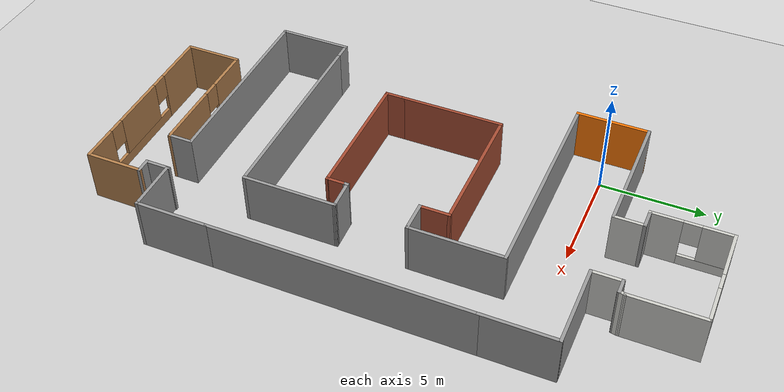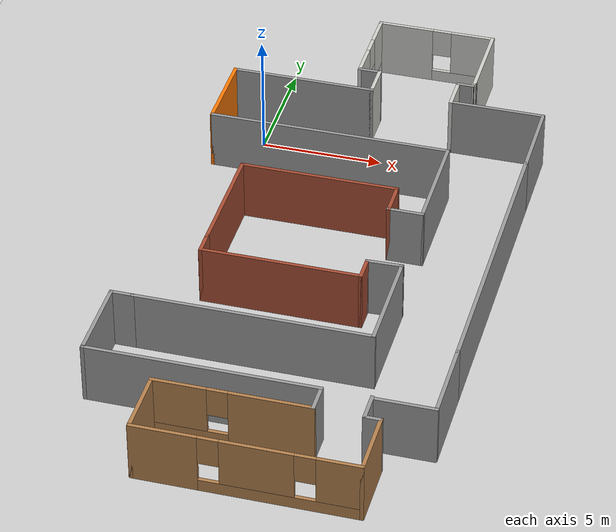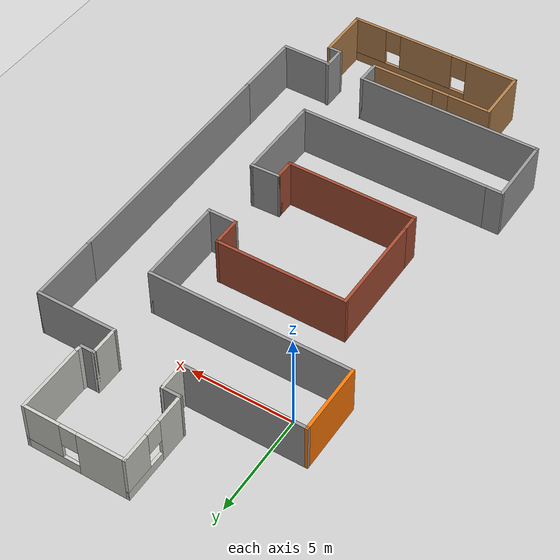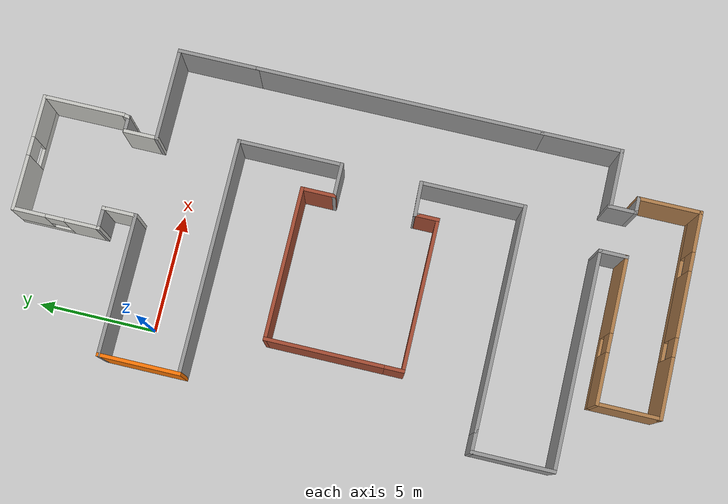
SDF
<sdf version="1.7">
 <world name="lab_world">
  <gravity>0 0 -9.8</gravity>
  <model name="ground_plane">
   <static>1</static>
   <link name="link">
    <collision name="collision">
     <geometry><plane><normal>0 0 1</normal><size>100 100</size></plane></geometry>
     <surface><friction><ode><mu>100</mu><mu2>50</mu2></ode></friction></surface>
    </collision>
    <visual name="visual">
     <cast_shadows>0</cast_shadows>
     <geometry><plane><normal>0 0 1</normal><size>100 100</size></plane></geometry>
     <material>
      <script><uri>file://media/materials/scripts/gazebo.material</uri><name>Gazebo/Grey</name></script>
     </material>
    </visual>
   </link>
  </model>
  <light name="sun" type="directional">
   <pose>0 0 10 0 -0 0</pose>
   <diffuse>0.8 0.8 0.8 1</diffuse>
   <specular>0.2 0.2 0.2 1</specular>
   <attenuation>
    <range>1000</range>
    <constant>0.9</constant>
    <linear>0.01</linear>
    <quadratic>0.001</quadratic>
   </attenuation>
   <direction>-0.5 0.1 -0.9</direction>
   <spot><inner_angle>0</inner_angle><outer_angle>0</outer_angle><falloff>0</falloff></spot>
  </light>
  <magnetic_field>6e-06 2.3e-05 -4.2e-05</magnetic_field>
  <atmosphere type="adiabatic"/>
  <physics type="ode">
   <max_step_size>0.001</max_step_size>
   <real_time_factor>1</real_time_factor>
   <real_time_update_rate>1000</real_time_update_rate>
  </physics>
  <scene><ambient>0.4 0.4 0.4 1</ambient><background>0.7 0.7 0.7 1</background><shadows>1</shadows></scene>
  <spherical_coordinates>
   <surface_model>EARTH_WGS84</surface_model>
   <latitude_deg>0</latitude_deg>
   <longitude_deg>0</longitude_deg>
   <elevation>0</elevation>
   <heading_deg>0</heading_deg>
  </spherical_coordinates>
  <model name="10floor">
   <pose>4.71186 -7.18173 0 0 -0 0</pose>
   <link name="Wall_1">
    <collision name="Wall_1_Collision">
     <geometry><box><size>3.5 0.15 2.5</size></box></geometry>
     <pose>0 0 1.25 0 -0 0</pose>
    </collision>
    <visual name="Wall_1_Visual">
     <pose>0 0 1.25 0 -0 0</pose>
     <geometry><box><size>3.5 0.15 2.5</size></box></geometry>
     <material>
      <script><uri>file://media/materials/scripts/gazebo.material</uri><name>Gazebo/Grey</name></script>
      <ambient>0.996078 0.47451 0.0196078 1</ambient>
     </material>
     <meta><layer>0</layer></meta>
    </visual>
    <pose>-6.35 7.075 0 0 -0 -1.5708</pose>
   </link>
   <link name="Wall_12">
    <collision name="Wall_12_Collision">
     <geometry><box><size>1.5 0.15 2.5</size></box></geometry>
     <pose>0 0 1.25 0 -0 0</pose>
    </collision>
    <visual name="Wall_12_Visual">
     <pose>0 0 1.25 0 -0 0</pose>
     <geometry><box><size>1.5 0.15 2.5</size></box></geometry>
     <material>
      <script><uri>file://media/materials/scripts/gazebo.material</uri><name>Gazebo/CeilingTiled</name></script>
      <ambient>1 1 1 1</ambient>
     </material>
     <meta><layer>0</layer></meta>
    </visual>
    <pose>-0.5 9.425 0 0 -0 1.5708</pose>
   </link>
   <link name="Wall_13">
    <collision name="Wall_13_Collision">
     <geometry><box><size>1 0.15 2.5</size></box></geometry>
     <pose>0 0 1.25 0 -0 0</pose>
    </collision>
    <visual name="Wall_13_Visual">
     <pose>0 0 1.25 0 -0 0</pose>
     <geometry><box><size>1 0.15 2.5</size></box></geometry>
     <material>
      <script><uri>file://media/materials/scripts/gazebo.material</uri><name>Gazebo/Grey</name></script>
      <ambient>1 1 1 1</ambient>
     </material>
     <meta><layer>0</layer></meta>
    </visual>
    <pose>-0.925 10.1 0 0 -0 3.14159</pose>
   </link>
   <link name="Wall_14">
    <pose>-1.35 11.9 0 0 -0 1.5708</pose>
    <visual name="Wall_14_Visual_0">
     <pose>-1.12461 0 1.25 0 -0 0</pose>
     <geometry><box><size>1.50079 0.15 2.5</size></box></geometry>
     <material>
      <script><uri>file://media/materials/scripts/gazebo.material</uri><name>Gazebo/CeilingTiled</name></script>
      <ambient>1 1 1 1</ambient>
     </material>
     <meta><layer>0</layer></meta>
    </visual>
    <collision name="Wall_14_Collision_0">
     <geometry><box><size>1.50079 0.15 2.5</size></box></geometry>
     <pose>-1.12461 0 1.25 0 -0 0</pose>
    </collision>
    <visual name="Wall_14_Visual_1">
     <pose>0.750395 0 0.25 0 -0 0</pose>
     <geometry><box><size>2.24921 0.15 0.5</size></box></geometry>
     <material>
      <script><uri>file://media/materials/scripts/gazebo.material</uri><name>Gazebo/CeilingTiled</name></script>
      <ambient>1 1 1 1</ambient>
     </material>
     <meta><layer>0</layer></meta>
    </visual>
    <collision name="Wall_14_Collision_1">
     <geometry><box><size>2.24921 0.15 0.5</size></box></geometry>
     <pose>0.750395 0 0.25 0 -0 0</pose>
    </collision>
    <visual name="Wall_14_Visual_2">
     <pose>1.1504 0 1.5 0 -0 0</pose>
     <geometry><box><size>1.44921 0.15 2</size></box></geometry>
     <material>
      <script><uri>file://media/materials/scripts/gazebo.material</uri><name>Gazebo/CeilingTiled</name></script>
      <ambient>1 1 1 1</ambient>
     </material>
     <meta><layer>0</layer></meta>
    </visual>
    <collision name="Wall_14_Collision_2">
     <geometry><box><size>1.44921 0.15 2</size></box></geometry>
     <pose>1.1504 0 1.5 0 -0 0</pose>
    </collision>
    <visual name="Wall_14_Visual_3">
     <pose>0.025791 0 1.9 0 -0 0</pose>
     <geometry><box><size>0.8 0.15 1.2</size></box></geometry>
     <material>
      <script><uri>file://media/materials/scripts/gazebo.material</uri><name>Gazebo/CeilingTiled</name></script>
      <ambient>1 1 1 1</ambient>
     </material>
     <meta><layer>0</layer></meta>
    </visual>
    <collision name="Wall_14_Collision_3">
     <geometry><box><size>0.8 0.15 1.2</size></box></geometry>
     <pose>0.025791 0 1.9 0 -0 0</pose>
    </collision>
   </link>
   <link name="Wall_15">
    <pose>1.075 13.7 0 0 -0 0</pose>
    <visual name="Wall_15_Visual_0">
     <pose>-1.31849 0 1.25 0 -0 0</pose>
     <geometry><box><size>2.36301 0.15 2.5</size></box></geometry>
     <material>
      <script><uri>file://media/materials/scripts/gazebo.material</uri><name>Gazebo/CeilingTiled</name></script>
      <ambient>1 1 1 1</ambient>
     </material>
     <meta><layer>0</layer></meta>
    </visual>
    <collision name="Wall_15_Collision_0">
     <geometry><box><size>2.36301 0.15 2.5</size></box></geometry>
     <pose>-1.31849 0 1.25 0 -0 0</pose>
    </collision>
    <visual name="Wall_15_Visual_1">
     <pose>1.18151 0 0.25 0 -0 0</pose>
     <geometry><box><size>2.63699 0.15 0.5</size></box></geometry>
     <material>
      <script><uri>file://media/materials/scripts/gazebo.material</uri><name>Gazebo/CeilingTiled</name></script>
      <ambient>1 1 1 1</ambient>
     </material>
     <meta><layer>0</layer></meta>
    </visual>
    <collision name="Wall_15_Collision_1">
     <geometry><box><size>2.63699 0.15 0.5</size></box></geometry>
     <pose>1.18151 0 0.25 0 -0 0</pose>
    </collision>
    <visual name="Wall_15_Visual_2">
     <pose>1.5815 0 1.5 0 -0 0</pose>
     <geometry><box><size>1.83699 0.15 2</size></box></geometry>
     <material>
      <script><uri>file://media/materials/scripts/gazebo.material</uri><name>Gazebo/CeilingTiled</name></script>
      <ambient>1 1 1 1</ambient>
     </material>
     <meta><layer>0</layer></meta>
    </visual>
    <collision name="Wall_15_Collision_2">
     <geometry><box><size>1.83699 0.15 2</size></box></geometry>
     <pose>1.5815 0 1.5 0 -0 0</pose>
    </collision>
    <visual name="Wall_15_Visual_3">
     <pose>0.263011 0 1.9 0 -0 0</pose>
     <geometry><box><size>0.8 0.15 1.2</size></box></geometry>
     <material>
      <script><uri>file://media/materials/scripts/gazebo.material</uri><name>Gazebo/CeilingTiled</name></script>
      <ambient>1 1 1 1</ambient>
     </material>
     <meta><layer>0</layer></meta>
    </visual>
    <collision name="Wall_15_Collision_3">
     <geometry><box><size>0.8 0.15 1.2</size></box></geometry>
     <pose>0.263011 0 1.9 0 -0 0</pose>
    </collision>
   </link>
   <link name="Wall_16">
    <collision name="Wall_16_Collision">
     <geometry><box><size>3.5 0.15 2.5</size></box></geometry>
     <pose>0 0 1.25 0 -0 0</pose>
    </collision>
    <visual name="Wall_16_Visual">
     <pose>0 0 1.25 0 -0 0</pose>
     <geometry><box><size>3.5 0.15 2.5</size></box></geometry>
     <material>
      <script><uri>file://media/materials/scripts/gazebo.material</uri><name>Gazebo/CeilingTiled</name></script>
      <ambient>1 1 1 1</ambient>
     </material>
     <meta><layer>0</layer></meta>
    </visual>
    <pose>3.5 12.025 0 0 -0 -1.5708</pose>
   </link>
   <link name="Wall_18">
    <collision name="Wall_18_Collision">
     <geometry><box><size>1.5 0.15 2.5</size></box></geometry>
     <pose>0 0 1.25 0 -0 0</pose>
    </collision>
    <visual name="Wall_18_Visual">
     <pose>0 0 1.25 0 -0 0</pose>
     <geometry><box><size>1.5 0.15 2.5</size></box></geometry>
     <material>
      <script><uri>file://media/materials/scripts/gazebo.material</uri><name>Gazebo/CeilingTiled</name></script>
      <ambient>1 1 1 1</ambient>
     </material>
     <meta><layer>0</layer></meta>
    </visual>
    <pose>2.85 9.425 0 0 -0 1.5708</pose>
   </link>
   <link name="Wall_19">
    <collision name="Wall_19_Collision">
     <geometry><box><size>0.75 0.15 2.5</size></box></geometry>
     <pose>0 0 1.25 0 -0 0</pose>
    </collision>
    <visual name="Wall_19_Visual">
     <pose>0 0 1.25 0 -0 0</pose>
     <geometry><box><size>0.75 0.15 2.5</size></box></geometry>
     <material>
      <script><uri>file://media/materials/scripts/gazebo.material</uri><name>Gazebo/Grey</name></script>
      <ambient>1 1 1 1</ambient>
     </material>
     <meta><layer>0</layer></meta>
    </visual>
    <pose>3.15 10.1 0 0 -0 0</pose>
   </link>
   <link name="Wall_20">
    <collision name="Wall_20_Collision">
     <geometry><box><size>0.404951 0.15 2.5</size></box></geometry>
     <pose>0 0 1.25 0 -0 0</pose>
    </collision>
    <visual name="Wall_20_Visual">
     <pose>0 0 1.25 0 -0 0</pose>
     <geometry><box><size>0.404951 0.15 2.5</size></box></geometry>
     <material>
      <script><uri>file://media/materials/scripts/gazebo.material</uri><name>Gazebo/CeilingTiled</name></script>
      <ambient>1 1 1 1</ambient>
     </material>
     <meta><layer>0</layer></meta>
    </visual>
    <pose>3.475 10.225 0 0 -0 1.3734</pose>
   </link>
   <link name="Wall_22">
    <collision name="Wall_22_Collision">
     <geometry><box><size>4.5 0.15 2.5</size></box></geometry>
     <pose>0 0 1.25 0 -0 0</pose>
    </collision>
    <visual name="Wall_22_Visual">
     <pose>0 0 1.25 0 -0 0</pose>
     <geometry><box><size>4.5 0.15 2.5</size></box></geometry>
     <material>
      <script><uri>file://media/materials/scripts/gazebo.material</uri><name>Gazebo/Grey</name></script>
      <ambient>1 1 1 1</ambient>
     </material>
     <meta><layer>0</layer></meta>
    </visual>
    <pose>3.5 3.225 0 0 -0 -1.5708</pose>
   </link>
   <link name="Wall_24">
    <collision name="Wall_24_Collision">
     <geometry><box><size>4.5 0.15 2.5</size></box></geometry>
     <pose>0 0 1.25 0 -0 0</pose>
    </collision>
    <visual name="Wall_24_Visual">
     <pose>0 0 1.25 0 -0 0</pose>
     <geometry><box><size>4.5 0.15 2.5</size></box></geometry>
     <material>
      <script><uri>file://media/materials/scripts/gazebo.material</uri><name>Gazebo/Grey</name></script>
      <ambient>1 1 1 1</ambient>
     </material>
     <meta><layer>0</layer></meta>
    </visual>
    <pose>3.5 -4.475 0 0 -0 -1.5708</pose>
   </link>
   <link name="Wall_27">
    <collision name="Wall_27_Collision">
     <geometry><box><size>12.25 0.15 2.5</size></box></geometry>
     <pose>0 0 1.25 0 -0 0</pose>
    </collision>
    <visual name="Wall_27_Visual">
     <pose>0 0 1.25 0 -0 0</pose>
     <geometry><box><size>12.25 0.15 2.5</size></box></geometry>
     <material>
      <script><uri>file://media/materials/scripts/gazebo.material</uri><name>Gazebo/Grey</name></script>
      <ambient>1 1 1 1</ambient>
     </material>
     <meta><layer>0</layer></meta>
    </visual>
    <pose>6.7 -0.65 0 0 -0 -1.5708</pose>
   </link>
   <link name="Wall_30">
    <collision name="Wall_30_Collision">
     <geometry><box><size>1.5 0.15 2.5</size></box></geometry>
     <pose>0 0 1.25 0 -0 0</pose>
    </collision>
    <visual name="Wall_30_Visual">
     <pose>0 0 1.25 0 -0 0</pose>
     <geometry><box><size>1.5 0.15 2.5</size></box></geometry>
     <material>
      <script><uri>file://media/materials/scripts/gazebo.material</uri><name>Gazebo/Grey</name></script>
      <ambient>1 1 1 1</ambient>
     </material>
     <meta><layer>0</layer></meta>
    </visual>
    <pose>2.825 1.05 0 0 -0 3.14159</pose>
   </link>
   <link name="Wall_31">
    <collision name="Wall_31_Collision">
     <geometry><box><size>1.5 0.15 2.5</size></box></geometry>
     <pose>0 0 1.25 0 -0 0</pose>
    </collision>
    <visual name="Wall_31_Visual">
     <pose>0 0 1.25 0 -0 0</pose>
     <geometry><box><size>1.5 0.15 2.5</size></box></geometry>
     <material>
      <script><uri>file://media/materials/scripts/gazebo.material</uri><name>Gazebo/Bricks</name></script>
      <ambient>1 1 1 1</ambient>
     </material>
     <meta><layer>0</layer></meta>
    </visual>
    <pose>2.15 1.725 0 0 -0 1.5708</pose>
   </link>
   <link name="Wall_32">
    <collision name="Wall_32_Collision">
     <geometry><box><size>6.5 0.15 2.5</size></box></geometry>
     <pose>0 0 1.25 0 -0 0</pose>
    </collision>
    <visual name="Wall_32_Visual">
     <pose>0 0 1.25 0 -0 0</pose>
     <geometry><box><size>6.5 0.15 2.5</size></box></geometry>
     <material>
      <script><uri>file://media/materials/scripts/gazebo.material</uri><name>Gazebo/Bricks</name></script>
      <ambient>1 1 1 1</ambient>
     </material>
     <meta><layer>0</layer></meta>
    </visual>
    <pose>-1.025 2.4 0 0 -0 3.14159</pose>
   </link>
   <link name="Wall_33">
    <collision name="Wall_33_Collision">
     <geometry><box><size>5 0.15 2.5</size></box></geometry>
     <pose>0 0 1.25 0 -0 0</pose>
    </collision>
    <visual name="Wall_33_Visual">
     <pose>0 0 1.25 0 -0 0</pose>
     <geometry><box><size>5 0.15 2.5</size></box></geometry>
     <material>
      <script><uri>file://media/materials/scripts/gazebo.material</uri><name>Gazebo/Bricks</name></script>
      <ambient>1 1 1 1</ambient>
     </material>
     <meta><layer>0</layer></meta>
    </visual>
    <pose>-4.2 -0.025 0 0 -0 -1.5708</pose>
   </link>
   <link name="Wall_34">
    <collision name="Wall_34_Collision">
     <geometry><box><size>1 0.15 2.5</size></box></geometry>
     <pose>0 0 1.25 0 -0 0</pose>
    </collision>
    <visual name="Wall_34_Visual">
     <pose>0 0 1.25 0 -0 0</pose>
     <geometry><box><size>1 0.15 2.5</size></box></geometry>
     <material>
      <script><uri>file://media/materials/scripts/gazebo.material</uri><name>Gazebo/Bricks</name></script>
      <ambient>1 1 1 1</ambient>
     </material>
     <meta><layer>0</layer></meta>
    </visual>
    <pose>-4.2 -2.875 0 0 -0 -1.5708</pose>
   </link>
   <link name="Wall_35">
    <collision name="Wall_35_Collision">
     <geometry><box><size>6.5 0.15 2.5</size></box></geometry>
     <pose>0 0 1.25 0 -0 0</pose>
    </collision>
    <visual name="Wall_35_Visual">
     <pose>0 0 1.25 0 -0 0</pose>
     <geometry><box><size>6.5 0.15 2.5</size></box></geometry>
     <material>
      <script><uri>file://media/materials/scripts/gazebo.material</uri><name>Gazebo/Bricks</name></script>
      <ambient>1 1 1 1</ambient>
     </material>
     <meta><layer>0</layer></meta>
    </visual>
    <pose>-1.025 -3.3 0 0 -0 0</pose>
   </link>
   <link name="Wall_36">
    <collision name="Wall_36_Collision">
     <geometry><box><size>1 0.15 2.5</size></box></geometry>
     <pose>0 0 1.25 0 -0 0</pose>
    </collision>
    <visual name="Wall_36_Visual">
     <pose>0 0 1.25 0 -0 0</pose>
     <geometry><box><size>1 0.15 2.5</size></box></geometry>
     <material>
      <script><uri>file://media/materials/scripts/gazebo.material</uri><name>Gazebo/Bricks</name></script>
      <ambient>1 1 1 1</ambient>
     </material>
     <meta><layer>0</layer></meta>
    </visual>
    <pose>2.15 -2.875 0 0 -0 1.5708</pose>
   </link>
   <link name="Wall_37">
    <collision name="Wall_37_Collision">
     <geometry><box><size>0.25 0.15 2.5</size></box></geometry>
     <pose>0 0 1.25 0 -0 0</pose>
    </collision>
    <visual name="Wall_37_Visual">
     <pose>0 0 1.25 0 -0 0</pose>
     <geometry><box><size>0.25 0.15 2.5</size></box></geometry>
     <material>
      <script><uri>file://media/materials/scripts/gazebo.material</uri><name>Gazebo/Grey</name></script>
      <ambient>1 1 1 1</ambient>
     </material>
     <meta><layer>0</layer></meta>
    </visual>
    <pose>2.15 -2.4 0 0 -0 1.5708</pose>
   </link>
   <link name="Wall_38">
    <collision name="Wall_38_Collision">
     <geometry><box><size>1.50093 0.15 2.5</size></box></geometry>
     <pose>0 0 1.25 0 -0 0</pose>
    </collision>
    <visual name="Wall_38_Visual">
     <pose>0 0 1.25 0 -0 0</pose>
     <geometry><box><size>1.50093 0.15 2.5</size></box></geometry>
     <material>
      <script><uri>file://media/materials/scripts/gazebo.material</uri><name>Gazebo/Grey</name></script>
      <ambient>1 1 1 1</ambient>
     </material>
     <meta><layer>0</layer></meta>
    </visual>
    <pose>2.825 -2.325 0 0 -0 0.03702</pose>
   </link>
   <link name="Wall_4">
    <collision name="Wall_4_Collision">
     <geometry><box><size>10 0.15 2.5</size></box></geometry>
     <pose>0 0 1.25 0 -0 0</pose>
    </collision>
    <visual name="Wall_4_Visual">
     <pose>0 0 1.25 0 -0 0</pose>
     <geometry><box><size>10 0.15 2.5</size></box></geometry>
     <material>
      <script><uri>file://media/materials/scripts/gazebo.material</uri><name>Gazebo/Grey</name></script>
      <ambient>1 1 1 1</ambient>
     </material>
     <meta><layer>0</layer></meta>
    </visual>
    <pose>-1.425 5.4 0 0 -0 0</pose>
   </link>
   <link name="Wall_40">
    <collision name="Wall_40_Collision">
     <geometry><box><size>9.5 0.15 2.5</size></box></geometry>
     <pose>0 0 1.25 0 -0 0</pose>
    </collision>
    <visual name="Wall_40_Visual">
     <pose>0 0 1.25 0 -0 0</pose>
     <geometry><box><size>9.5 0.15 2.5</size></box></geometry>
     <material>
      <script><uri>file://media/materials/scripts/gazebo.material</uri><name>Gazebo/Grey</name></script>
      <ambient>1 1 1 1</ambient>
     </material>
     <meta><layer>0</layer></meta>
    </visual>
    <pose>-1.175 -6.65 0 0 -0 3.14159</pose>
   </link>
   <link name="Wall_41">
    <collision name="Wall_41_Collision">
     <geometry><box><size>1 0.15 2.5</size></box></geometry>
     <pose>0 0 1.25 0 -0 0</pose>
    </collision>
    <visual name="Wall_41_Visual">
     <pose>0 0 1.25 0 -0 0</pose>
     <geometry><box><size>1 0.15 2.5</size></box></geometry>
     <material>
      <script><uri>file://media/materials/scripts/gazebo.material</uri><name>Gazebo/Grey</name></script>
      <ambient>1 1 1 1</ambient>
     </material>
     <meta><layer>0</layer></meta>
    </visual>
    <pose>-6.275 -6.65 0 0 -0 3.14159</pose>
   </link>
   <link name="Wall_42">
    <collision name="Wall_42_Collision">
     <geometry><box><size>3.5 0.15 2.5</size></box></geometry>
     <pose>0 0 1.25 0 -0 0</pose>
    </collision>
    <visual name="Wall_42_Visual">
     <pose>0 0 1.25 0 -0 0</pose>
     <geometry><box><size>3.5 0.15 2.5</size></box></geometry>
     <material>
      <script><uri>file://media/materials/scripts/gazebo.material</uri><name>Gazebo/Grey</name></script>
      <ambient>1 1 1 1</ambient>
     </material>
     <meta><layer>0</layer></meta>
    </visual>
    <pose>-6.7 -8.325 0 0 -0 -1.5708</pose>
   </link>
   <link name="Wall_43">
    <collision name="Wall_43_Collision">
     <geometry><box><size>9.25 0.15 2.5</size></box></geometry>
     <pose>0 0 1.25 0 -0 0</pose>
    </collision>
    <visual name="Wall_43_Visual">
     <pose>0 0 1.25 0 -0 0</pose>
     <geometry><box><size>9.25 0.15 2.5</size></box></geometry>
     <material>
      <script><uri>file://media/materials/scripts/gazebo.material</uri><name>Gazebo/Grey</name></script>
      <ambient>1 1 1 1</ambient>
     </material>
     <meta><layer>0</layer></meta>
    </visual>
    <pose>-2.15 -10 0 0 -0 0</pose>
   </link>
   <link name="Wall_44">
    <collision name="Wall_44_Collision">
     <geometry><box><size>1.25 0.15 2.5</size></box></geometry>
     <pose>0 0 1.25 0 -0 0</pose>
    </collision>
    <visual name="Wall_44_Visual">
     <pose>0 0 1.25 0 -0 0</pose>
     <geometry><box><size>1.25 0.15 2.5</size></box></geometry>
     <material>
      <script><uri>file://media/materials/scripts/gazebo.material</uri><name>Gazebo/Grey</name></script>
      <ambient>1 1 1 1</ambient>
     </material>
     <meta><layer>0</layer></meta>
    </visual>
    <pose>2.4 -10.55 0 0 -0 -1.5708</pose>
   </link>
   <link name="Wall_45">
    <pose>-0.65 -11.1 0 0 -0 3.14159</pose>
    <visual name="Wall_45_Visual_0">
     <pose>-1.49007 0 1.25 0 -0 0</pose>
     <geometry><box><size>3.26986 0.15 2.5</size></box></geometry>
     <material>
      <script><uri>file://media/materials/scripts/gazebo.material</uri><name>Gazebo/Wood</name></script>
      <ambient>1 1 1 1</ambient>
     </material>
     <meta><layer>0</layer></meta>
    </visual>
    <collision name="Wall_45_Collision_0">
     <geometry><box><size>3.26986 0.15 2.5</size></box></geometry>
     <pose>-1.49007 0 1.25 0 -0 0</pose>
    </collision>
    <visual name="Wall_45_Visual_1">
     <pose>1.63493 0 0.25 0 -0 0</pose>
     <geometry><box><size>2.98014 0.15 0.5</size></box></geometry>
     <material>
      <script><uri>file://media/materials/scripts/gazebo.material</uri><name>Gazebo/Wood</name></script>
      <ambient>1 1 1 1</ambient>
     </material>
     <meta><layer>0</layer></meta>
    </visual>
    <collision name="Wall_45_Collision_1">
     <geometry><box><size>2.98014 0.15 0.5</size></box></geometry>
     <pose>1.63493 0 0.25 0 -0 0</pose>
    </collision>
    <visual name="Wall_45_Visual_2">
     <pose>2.03493 0 1.5 0 -0 0</pose>
     <geometry><box><size>2.18014 0.15 2</size></box></geometry>
     <material>
      <script><uri>file://media/materials/scripts/gazebo.material</uri><name>Gazebo/Wood</name></script>
      <ambient>1 1 1 1</ambient>
     </material>
     <meta><layer>0</layer></meta>
    </visual>
    <collision name="Wall_45_Collision_2">
     <geometry><box><size>2.18014 0.15 2</size></box></geometry>
     <pose>2.03493 0 1.5 0 -0 0</pose>
    </collision>
    <visual name="Wall_45_Visual_3">
     <pose>0.54486 0 1.9 0 -0 0</pose>
     <geometry><box><size>0.8 0.15 1.2</size></box></geometry>
     <material>
      <script><uri>file://media/materials/scripts/gazebo.material</uri><name>Gazebo/Wood</name></script>
      <ambient>1 1 1 1</ambient>
     </material>
     <meta><layer>0</layer></meta>
    </visual>
    <collision name="Wall_45_Collision_3">
     <geometry><box><size>0.8 0.15 1.2</size></box></geometry>
     <pose>0.54486 0 1.9 0 -0 0</pose>
    </collision>
   </link>
   <link name="Wall_46">
    <collision name="Wall_46_Collision">
     <geometry><box><size>2.75 0.15 2.5</size></box></geometry>
     <pose>0 0 1.25 0 -0 0</pose>
    </collision>
    <visual name="Wall_46_Visual">
     <pose>0 0 1.25 0 -0 0</pose>
     <geometry><box><size>2.75 0.15 2.5</size></box></geometry>
     <material>
      <script><uri>file://media/materials/scripts/gazebo.material</uri><name>Gazebo/Wood</name></script>
      <ambient>1 1 1 1</ambient>
     </material>
     <meta><layer>0</layer></meta>
    </visual>
    <pose>-3.7 -12.4 0 0 -0 -1.5708</pose>
   </link>
   <link name="Wall_47">
    <pose>0.6 -13.7 0 0 -0 0</pose>
    <visual name="Wall_47_Visual_0">
     <pose>-3.07386 0 1.25 0 -0 0</pose>
     <geometry><box><size>2.60229 0.15 2.5</size></box></geometry>
     <material>
      <script><uri>file://media/materials/scripts/gazebo.material</uri><name>Gazebo/Wood</name></script>
      <ambient>1 1 1 1</ambient>
     </material>
     <meta><layer>0</layer></meta>
    </visual>
    <collision name="Wall_47_Collision_0">
     <geometry><box><size>2.60229 0.15 2.5</size></box></geometry>
     <pose>-3.07386 0 1.25 0 -0 0</pose>
    </collision>
    <visual name="Wall_47_Visual_1">
     <pose>1.30114 0 0.25 0 -0 0</pose>
     <geometry><box><size>6.14771 0.15 0.5</size></box></geometry>
     <material>
      <script><uri>file://media/materials/scripts/gazebo.material</uri><name>Gazebo/Wood</name></script>
      <ambient>1 1 1 1</ambient>
     </material>
     <meta><layer>0</layer></meta>
    </visual>
    <collision name="Wall_47_Collision_1">
     <geometry><box><size>6.14771 0.15 0.5</size></box></geometry>
     <pose>1.30114 0 0.25 0 -0 0</pose>
    </collision>
    <visual name="Wall_47_Visual_2">
     <pose>0.421402 0 1.5 0 -0 0</pose>
     <geometry><box><size>2.78823 0.15 2</size></box></geometry>
     <material>
      <script><uri>file://media/materials/scripts/gazebo.material</uri><name>Gazebo/Wood</name></script>
      <ambient>1 1 1 1</ambient>
     </material>
     <meta><layer>0</layer></meta>
    </visual>
    <collision name="Wall_47_Collision_2">
     <geometry><box><size>2.78823 0.15 2</size></box></geometry>
     <pose>0.421402 0 1.5 0 -0 0</pose>
    </collision>
    <visual name="Wall_47_Visual_3">
     <pose>3.49526 0 1.5 0 -0 0</pose>
     <geometry><box><size>1.75948 0.15 2</size></box></geometry>
     <material>
      <script><uri>file://media/materials/scripts/gazebo.material</uri><name>Gazebo/Wood</name></script>
      <ambient>1 1 1 1</ambient>
     </material>
     <meta><layer>0</layer></meta>
    </visual>
    <collision name="Wall_47_Collision_3">
     <geometry><box><size>1.75948 0.15 2</size></box></geometry>
     <pose>3.49526 0 1.5 0 -0 0</pose>
    </collision>
    <visual name="Wall_47_Visual_4">
     <pose>-1.37271 0 1.9 0 -0 0</pose>
     <geometry><box><size>0.8 0.15 1.2</size></box></geometry>
     <material>
      <script><uri>file://media/materials/scripts/gazebo.material</uri><name>Gazebo/Wood</name></script>
      <ambient>1 1 1 1</ambient>
     </material>
     <meta><layer>0</layer></meta>
    </visual>
    <collision name="Wall_47_Collision_4">
     <geometry><box><size>0.8 0.15 1.2</size></box></geometry>
     <pose>-1.37271 0 1.9 0 -0 0</pose>
    </collision>
    <visual name="Wall_47_Visual_5">
     <pose>2.21552 0 1.9 0 -0 0</pose>
     <geometry><box><size>0.8 0.15 1.2</size></box></geometry>
     <material>
      <script><uri>file://media/materials/scripts/gazebo.material</uri><name>Gazebo/Wood</name></script>
      <ambient>1 1 1 1</ambient>
     </material>
     <meta><layer>0</layer></meta>
    </visual>
    <collision name="Wall_47_Collision_5">
     <geometry><box><size>0.8 0.15 1.2</size></box></geometry>
     <pose>2.21552 0 1.9 0 -0 0</pose>
    </collision>
   </link>
   <link name="Wall_48">
    <collision name="Wall_48_Collision">
     <geometry><box><size>2.75 0.15 2.5</size></box></geometry>
     <pose>0 0 1.25 0 -0 0</pose>
    </collision>
    <visual name="Wall_48_Visual">
     <pose>0 0 1.25 0 -0 0</pose>
     <geometry><box><size>2.75 0.15 2.5</size></box></geometry>
     <material>
      <script><uri>file://media/materials/scripts/gazebo.material</uri><name>Gazebo/Wood</name></script>
      <ambient>1 1 1 1</ambient>
     </material>
     <meta><layer>0</layer></meta>
    </visual>
    <pose>4.9 -12.4 0 0 -0 1.5708</pose>
   </link>
   <link name="Wall_49">
    <collision name="Wall_49_Collision">
     <geometry><box><size>0.75 0.15 2.5</size></box></geometry>
     <pose>0 0 1.25 0 -0 0</pose>
    </collision>
    <visual name="Wall_49_Visual">
     <pose>0 0 1.25 0 -0 0</pose>
     <geometry><box><size>0.75 0.15 2.5</size></box></geometry>
     <material>
      <script><uri>file://media/materials/scripts/gazebo.material</uri><name>Gazebo/Grey</name></script>
      <ambient>1 1 1 1</ambient>
     </material>
     <meta><layer>0</layer></meta>
    </visual>
    <pose>4.6 -11.1 0 0 -0 3.14159</pose>
   </link>
   <link name="Wall_50">
    <collision name="Wall_50_Collision">
     <geometry><box><size>1.25 0.15 2.5</size></box></geometry>
     <pose>0 0 1.25 0 -0 0</pose>
    </collision>
    <visual name="Wall_50_Visual">
     <pose>0 0 1.25 0 -0 0</pose>
     <geometry><box><size>1.25 0.15 2.5</size></box></geometry>
     <material>
      <script><uri>file://media/materials/scripts/gazebo.material</uri><name>Gazebo/Grey</name></script>
      <ambient>1 1 1 1</ambient>
     </material>
     <meta><layer>0</layer></meta>
    </visual>
    <pose>4.3 -10.55 0 0 -0 1.5708</pose>
   </link>
   <link name="Wall_52">
    <collision name="Wall_52_Collision">
     <geometry><box><size>3.5 0.15 2.5</size></box></geometry>
     <pose>0 0 1.25 0 -0 0</pose>
    </collision>
    <visual name="Wall_52_Visual">
     <pose>0 0 1.25 0 -0 0</pose>
     <geometry><box><size>3.5 0.15 2.5</size></box></geometry>
     <material>
      <script><uri>file://media/materials/scripts/gazebo.material</uri><name>Gazebo/Grey</name></script>
      <ambient>1 1 1 1</ambient>
     </material>
     <meta><layer>0</layer></meta>
    </visual>
    <pose>6.7 -8.375 0 0 -0 -1.5708</pose>
   </link>
   <link name="Wall_53">
    <collision name="Wall_53_Collision">
     <geometry><box><size>2.5 0.15 2.5</size></box></geometry>
     <pose>0 0 1.25 0 -0 0</pose>
    </collision>
    <visual name="Wall_53_Visual">
     <pose>0 0 1.25 0 -0 0</pose>
     <geometry><box><size>2.5 0.15 2.5</size></box></geometry>
     <material>
      <script><uri>file://media/materials/scripts/gazebo.material</uri><name>Gazebo/Grey</name></script>
      <ambient>1 1 1 1</ambient>
     </material>
     <meta><layer>0</layer></meta>
    </visual>
    <pose>5.525 -10.05 0 0 -0 3.14159</pose>
   </link>
   <link name="Wall_6">
    <collision name="Wall_6_Collision">
     <geometry><box><size>6 0.15 2.5</size></box></geometry>
     <pose>0 0 1.25 0 -0 0</pose>
    </collision>
    <visual name="Wall_6_Visual">
     <pose>0 0 1.25 0 -0 0</pose>
     <geometry><box><size>6 0.15 2.5</size></box></geometry>
     <material>
      <script><uri>file://media/materials/scripts/gazebo.material</uri><name>Gazebo/Grey</name></script>
      <ambient>1 1 1 1</ambient>
     </material>
     <meta><layer>0</layer></meta>
    </visual>
    <pose>-3.425 8.75 0 0 -0 0</pose>
   </link>
   <link name="Wall_8">
    <collision name="Wall_8_Collision">
     <geometry><box><size>4 0.15 2.5</size></box></geometry>
     <pose>0 0 1.25 0 -0 0</pose>
    </collision>
    <visual name="Wall_8_Visual">
     <pose>0 0 1.25 0 -0 0</pose>
     <geometry><box><size>4 0.15 2.5</size></box></geometry>
     <material>
      <script><uri>file://media/materials/scripts/gazebo.material</uri><name>Gazebo/Grey</name></script>
      <ambient>1 1 1 1</ambient>
     </material>
     <meta><layer>0</layer></meta>
    </visual>
    <pose>4.775 8.75 0 0 -0 0</pose>
   </link>
   <link name="Wall_9">
    <collision name="Wall_9_Collision">
     <geometry><box><size>3.5 0.15 2.5</size></box></geometry>
     <pose>0 0 1.25 0 -0 0</pose>
    </collision>
    <visual name="Wall_9_Visual">
     <pose>0 0 1.25 0 -0 0</pose>
     <geometry><box><size>3.5 0.15 2.5</size></box></geometry>
     <material>
      <script><uri>file://media/materials/scripts/gazebo.material</uri><name>Gazebo/Grey</name></script>
      <ambient>1 1 1 1</ambient>
     </material>
     <meta><layer>0</layer></meta>
    </visual>
    <pose>6.7 7.075 0 0 -0 -1.5708</pose>
   </link>
   <static>1</static>
  </model>
 </world>
</sdf>
